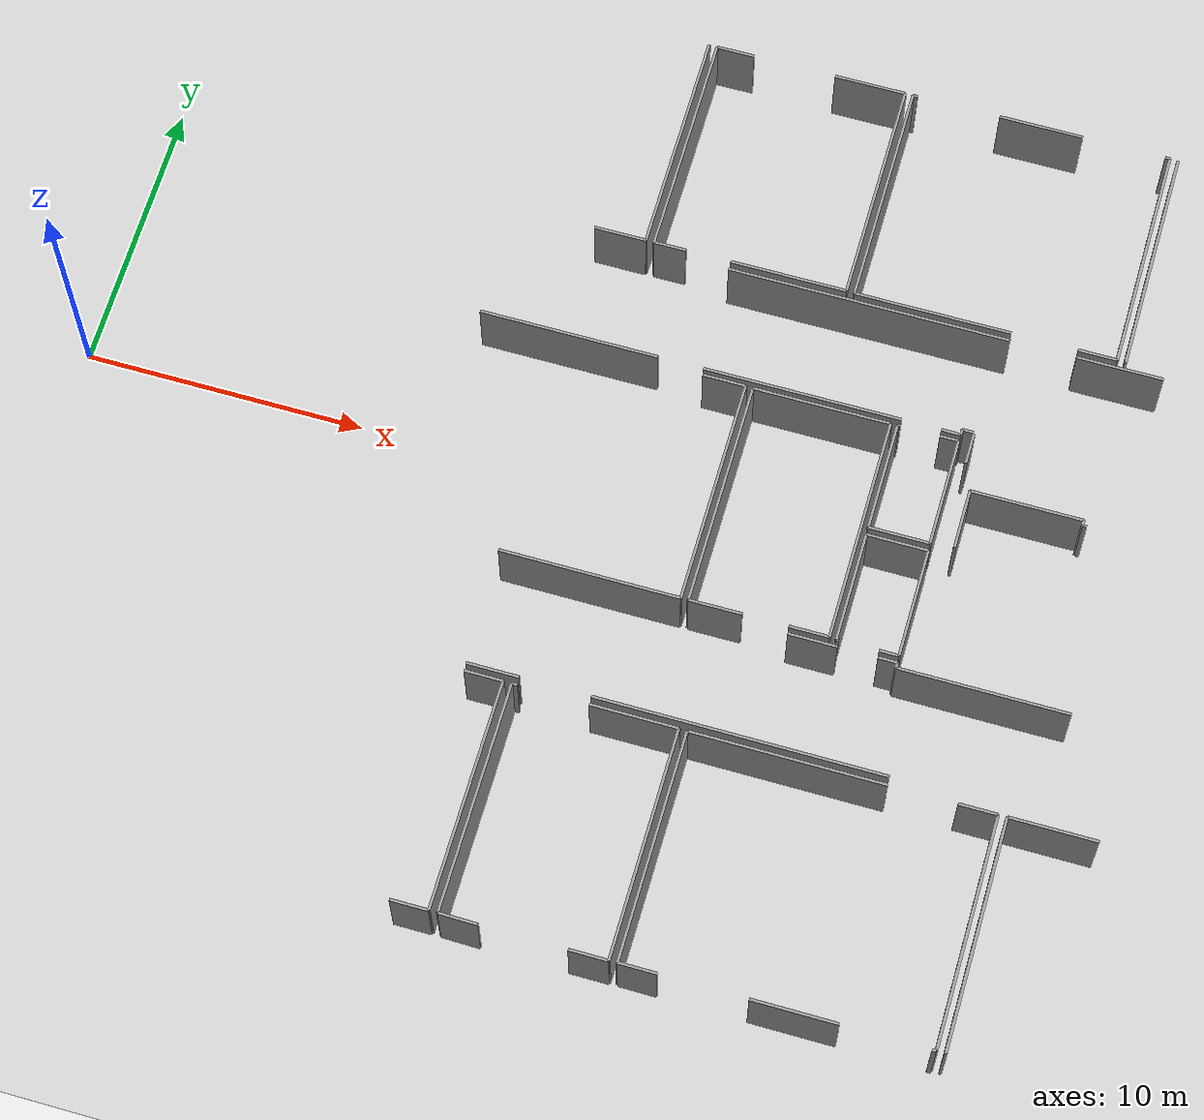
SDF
<sdf version="1.6">
 <world name="default">
  <model name="ground_plane">
   <static>1</static>
   <link name="link">
    <collision name="collision">
     <geometry><plane><normal>0 0 1</normal><size>100 100</size></plane></geometry>
     <surface><friction><ode><mu>100</mu><mu2>50</mu2></ode></friction></surface>
    </collision>
    <visual name="visual">
     <cast_shadows>0</cast_shadows>
     <geometry><plane><normal>0 0 1</normal><size>100 100</size></plane></geometry>
     <material>
      <script><uri>file://media/materials/scripts/gazebo.material</uri><name>Gazebo/Grey</name></script>
     </material>
    </visual>
   </link>
  </model>
  <model name="50041172">
   <static>1</static>
   <link name="Wall_59">
    <collision name="Wall_59_Collision">
     <geometry><box><size>1.3399383951 0.1 2.5</size></box></geometry>
     <pose>0.669969197549 0 1.25 0 0 0</pose>
    </collision>
    <visual name="Wall_59_Visual">
     <pose>0.669969197549 0 1.25 0 0 0</pose>
     <geometry><box><size>1.3399383951 0.1 2.5</size></box></geometry>
     <material>
      <script><uri>file://media/materials/scripts/gazebo.material</uri><name>Gazebo/Grey</name></script>
      <ambient>1 1 1 1</ambient>
     </material>
    </visual>
    <pose>82.1731923407 -25.3285065574 0 0 0 0.0</pose>
   </link>
   <link name="Wall_60">
    <collision name="Wall_60_Collision">
     <geometry><box><size>8.22012638532 0.1 2.5</size></box></geometry>
     <pose>4.11006319266 0 1.25 0 0 0</pose>
    </collision>
    <visual name="Wall_60_Visual">
     <pose>4.11006319266 0 1.25 0 0 0</pose>
     <geometry><box><size>8.22012638532 0.1 2.5</size></box></geometry>
     <material>
      <script><uri>file://media/materials/scripts/gazebo.material</uri><name>Gazebo/Grey</name></script>
      <ambient>1 1 1 1</ambient>
     </material>
    </visual>
    <pose>83.5131307358 -25.3285065574 0 0 0 -1.57079632679</pose>
   </link>
   <link name="Wall_61">
    <collision name="Wall_61_Collision">
     <geometry><box><size>1.3290146391 0.1 2.5</size></box></geometry>
     <pose>0.664507319552 0 1.25 0 0 0</pose>
    </collision>
    <visual name="Wall_61_Visual">
     <pose>0.664507319552 0 1.25 0 0 0</pose>
     <geometry><box><size>1.3290146391 0.1 2.5</size></box></geometry>
     <material>
      <script><uri>file://media/materials/scripts/gazebo.material</uri><name>Gazebo/Grey</name></script>
      <ambient>1 1 1 1</ambient>
     </material>
    </visual>
    <pose>83.5131307358 -33.5486329427 0 0 0 3.14159265359</pose>
   </link>
   <link name="Wall_63">
    <collision name="Wall_63_Collision">
     <geometry><box><size>8.21352132355 0.1 2.5</size></box></geometry>
     <pose>4.10676066178 0 1.25 0 0 0</pose>
    </collision>
    <visual name="Wall_63_Visual">
     <pose>4.10676066178 0 1.25 0 0 0</pose>
     <geometry><box><size>8.21352132355 0.1 2.5</size></box></geometry>
     <material>
      <script><uri>file://media/materials/scripts/gazebo.material</uri><name>Gazebo/Grey</name></script>
      <ambient>1 1 1 1</ambient>
     </material>
    </visual>
    <pose>83.8153123115 -33.5468546569 0 0 0 1.57079632679</pose>
   </link>
   <link name="Wall_64">
    <collision name="Wall_64_Collision">
     <geometry><box><size>0.201073322537 0.1 2.5</size></box></geometry>
     <pose>0.100536661268 0 1.25 0 0 0</pose>
    </collision>
    <visual name="Wall_64_Visual">
     <pose>0.100536661268 0 1.25 0 0 0</pose>
     <geometry><box><size>0.201073322537 0.1 2.5</size></box></geometry>
     <material>
      <script><uri>file://media/materials/scripts/gazebo.material</uri><name>Gazebo/Grey</name></script>
      <ambient>1 1 1 1</ambient>
     </material>
    </visual>
    <pose>83.8153123115 -25.3333333333 0 0 0 0.0</pose>
   </link>
   <link name="Wall_65">
    <collision name="Wall_65_Collision">
     <geometry><box><size>3.06081102537 0.1 2.5</size></box></geometry>
     <pose>1.53040551269 0 1.25 0 0 0</pose>
    </collision>
    <visual name="Wall_65_Visual">
     <pose>1.53040551269 0 1.25 0 0 0</pose>
     <geometry><box><size>3.06081102537 0.1 2.5</size></box></geometry>
     <material>
      <script><uri>file://media/materials/scripts/gazebo.material</uri><name>Gazebo/Grey</name></script>
      <ambient>1 1 1 1</ambient>
     </material>
    </visual>
    <pose>86.4777873043 -25.3333333333 0 0 0 0.0</pose>
   </link>
   <link name="Wall_66">
    <collision name="Wall_66_Collision">
     <geometry><box><size>8.23257438633 0.1 2.5</size></box></geometry>
     <pose>4.11628719317 0 1.25 0 0 0</pose>
    </collision>
    <visual name="Wall_66_Visual">
     <pose>4.11628719317 0 1.25 0 0 0</pose>
     <geometry><box><size>8.23257438633 0.1 2.5</size></box></geometry>
     <material>
      <script><uri>file://media/materials/scripts/gazebo.material</uri><name>Gazebo/Grey</name></script>
      <ambient>1 1 1 1</ambient>
     </material>
    </visual>
    <pose>89.5385983297 -25.3333333333 0 0 0 -1.57079632679</pose>
   </link>
   <link name="Wall_67">
    <collision name="Wall_67_Collision">
     <geometry><box><size>1.3550538249 0.1 2.5</size></box></geometry>
     <pose>0.677526912451 0 1.25 0 0 0</pose>
    </collision>
    <visual name="Wall_67_Visual">
     <pose>0.677526912451 0 1.25 0 0 0</pose>
     <geometry><box><size>1.3550538249 0.1 2.5</size></box></geometry>
     <material>
      <script><uri>file://media/materials/scripts/gazebo.material</uri><name>Gazebo/Grey</name></script>
      <ambient>1 1 1 1</ambient>
     </material>
    </visual>
    <pose>89.5385983297 -33.5659077197 0 0 0 3.14159265359</pose>
   </link>
   <link name="Wall_68">
    <collision name="Wall_68_Collision">
     <geometry><box><size>1.35556879199 0.1 2.5</size></box></geometry>
     <pose>0.677784395995 0 1.25 0 0 0</pose>
    </collision>
    <visual name="Wall_68_Visual">
     <pose>0.677784395995 0 1.25 0 0 0</pose>
     <geometry><box><size>1.35556879199 0.1 2.5</size></box></geometry>
     <material>
      <script><uri>file://media/materials/scripts/gazebo.material</uri><name>Gazebo/Grey</name></script>
      <ambient>1 1 1 1</ambient>
     </material>
    </visual>
    <pose>85.1707471976 -33.5659077197 0 0 0 3.12753678989</pose>
   </link>
   <link name="Wall_69">
    <collision name="Wall_69_Collision">
     <geometry><box><size>8.20056524086 0.1 2.5</size></box></geometry>
     <pose>4.10028262043 0 1.25 0 0 0</pose>
    </collision>
    <visual name="Wall_69_Visual">
     <pose>4.10028262043 0 1.25 0 0 0</pose>
     <geometry><box><size>8.20056524086 0.1 2.5</size></box></geometry>
     <material>
      <script><uri>file://media/materials/scripts/gazebo.material</uri><name>Gazebo/Grey</name></script>
      <ambient>1 1 1 1</ambient>
     </material>
    </visual>
    <pose>89.8213457813 -33.5471086977 0 0 0 1.57079632679</pose>
   </link>
   <link name="Wall_70">
    <collision name="Wall_70_Collision">
     <geometry><box><size>6.79444920771 0.1 2.5</size></box></geometry>
     <pose>3.39722460386 0 1.25 0 0 0</pose>
    </collision>
    <visual name="Wall_70_Visual">
     <pose>3.39722460386 0 1.25 0 0 0</pose>
     <geometry><box><size>6.79444920771 0.1 2.5</size></box></geometry>
     <material>
      <script><uri>file://media/materials/scripts/gazebo.material</uri><name>Gazebo/Grey</name></script>
      <ambient>1 1 1 1</ambient>
     </material>
    </visual>
    <pose>89.8213457813 -25.3465434569 0 0 0 0.0</pose>
   </link>
   <link name="Wall_71">
    <collision name="Wall_71_Collision">
     <geometry><box><size>1.3467974977 0.1 2.5</size></box></geometry>
     <pose>0.673398748849 0 1.25 0 0 0</pose>
    </collision>
    <visual name="Wall_71_Visual">
     <pose>0.673398748849 0 1.25 0 0 0</pose>
     <geometry><box><size>1.3467974977 0.1 2.5</size></box></geometry>
     <material>
      <script><uri>file://media/materials/scripts/gazebo.material</uri><name>Gazebo/Grey</name></script>
      <ambient>1 1 1 1</ambient>
     </material>
    </visual>
    <pose>98.9680861198 -25.3465434569 0 0 0 0.0</pose>
   </link>
   <link name="Wall_72">
    <collision name="Wall_72_Collision">
     <geometry><box><size>8.20374075133 0.1 2.5</size></box></geometry>
     <pose>4.10187037566 0 1.25 0 0 0</pose>
    </collision>
    <visual name="Wall_72_Visual">
     <pose>4.10187037566 0 1.25 0 0 0</pose>
     <geometry><box><size>8.20374075133 0.1 2.5</size></box></geometry>
     <material>
      <script><uri>file://media/materials/scripts/gazebo.material</uri><name>Gazebo/Grey</name></script>
      <ambient>1 1 1 1</ambient>
     </material>
    </visual>
    <pose>100.314883618 -25.3465434569 0 0 0 -1.57079632679</pose>
   </link>
   <link name="Wall_73">
    <collision name="Wall_73_Collision">
     <geometry><box><size>0.146708583405 0.1 2.5</size></box></geometry>
     <pose>0.0733542917024 0 1.25 0 0 0</pose>
    </collision>
    <visual name="Wall_73_Visual">
     <pose>0.0733542917024 0 1.25 0 0 0</pose>
     <geometry><box><size>0.146708583405 0.1 2.5</size></box></geometry>
     <material>
      <script><uri>file://media/materials/scripts/gazebo.material</uri><name>Gazebo/Grey</name></script>
      <ambient>1 1 1 1</ambient>
     </material>
    </visual>
    <pose>100.314883618 -33.5502842082 0 0 0 3.14159265359</pose>
   </link>
   <link name="Wall_74">
    <collision name="Wall_74_Collision">
     <geometry><box><size>2.96249722143 0.1 2.5</size></box></geometry>
     <pose>1.48124861071 0 1.25 0 0 0</pose>
    </collision>
    <visual name="Wall_74_Visual">
     <pose>1.48124861071 0 1.25 0 0 0</pose>
     <geometry><box><size>2.96249722143 0.1 2.5</size></box></geometry>
     <material>
      <script><uri>file://media/materials/scripts/gazebo.material</uri><name>Gazebo/Grey</name></script>
      <ambient>1 1 1 1</ambient>
     </material>
    </visual>
    <pose>97.1454701343 -33.5502842082 0 0 0 3.14159265359</pose>
   </link>
   <link name="Wall_75">
    <collision name="Wall_75_Collision">
     <geometry><box><size>1.32647803173 0.1 2.5</size></box></geometry>
     <pose>0.663239015865 0 1.25 0 0 0</pose>
    </collision>
    <visual name="Wall_75_Visual">
     <pose>0.663239015865 0 1.25 0 0 0</pose>
     <geometry><box><size>1.32647803173 0.1 2.5</size></box></geometry>
     <material>
      <script><uri>file://media/materials/scripts/gazebo.material</uri><name>Gazebo/Grey</name></script>
      <ambient>1 1 1 1</ambient>
     </material>
    </visual>
    <pose>91.1478200121 -33.5502842082 0 0 0 3.13919871006</pose>
   </link>
   <link name="Wall_76">
    <collision name="Wall_76_Collision">
     <geometry><box><size>8.20615413928 0.1 2.5</size></box></geometry>
     <pose>4.10307706964 0 1.25 0 0 0</pose>
    </collision>
    <visual name="Wall_76_Visual">
     <pose>4.10307706964 0 1.25 0 0 0</pose>
     <geometry><box><size>8.20615413928 0.1 2.5</size></box></geometry>
     <material>
      <script><uri>file://media/materials/scripts/gazebo.material</uri><name>Gazebo/Grey</name></script>
      <ambient>1 1 1 1</ambient>
     </material>
    </visual>
    <pose>100.61922454 -33.5491410244 0 0 0 1.57079632679</pose>
   </link>
   <link name="Wall_77">
    <collision name="Wall_77_Collision">
     <geometry><box><size>3.06944841383 0.1 2.5</size></box></geometry>
     <pose>1.53472420692 0 1.25 0 0 0</pose>
    </collision>
    <visual name="Wall_77_Visual">
     <pose>1.53472420692 0 1.25 0 0 0</pose>
     <geometry><box><size>3.06944841383 0.1 2.5</size></box></geometry>
     <material>
      <script><uri>file://media/materials/scripts/gazebo.material</uri><name>Gazebo/Grey</name></script>
      <ambient>1 1 1 1</ambient>
     </material>
    </visual>
    <pose>100.61922454 -25.3429868851 0 0 0 0.0</pose>
   </link>
   <link name="Wall_139">
    <collision name="Wall_139_Collision">
     <geometry><box><size>8.14810580801 0.1 2.5</size></box></geometry>
     <pose>4.074052904 0 1.25 0 0 0</pose>
    </collision>
    <visual name="Wall_139_Visual">
     <pose>4.074052904 0 1.25 0 0 0</pose>
     <geometry><box><size>8.14810580801 0.1 2.5</size></box></geometry>
     <material>
      <script><uri>file://media/materials/scripts/gazebo.material</uri><name>Gazebo/Grey</name></script>
      <ambient>1 1 1 1</ambient>
     </material>
    </visual>
    <pose>88.6052522943 -20.8548474167 0 0 0 1.57079632679</pose>
   </link>
   <link name="Wall_140">
    <collision name="Wall_140_Collision">
     <geometry><box><size>4.85383125337 0.1 2.5</size></box></geometry>
     <pose>2.42691562669 0 1.25 0 0 0</pose>
    </collision>
    <visual name="Wall_140_Visual">
     <pose>2.42691562669 0 1.25 0 0 0</pose>
     <geometry><box><size>4.85383125337 0.1 2.5</size></box></geometry>
     <material>
      <script><uri>file://media/materials/scripts/gazebo.material</uri><name>Gazebo/Grey</name></script>
      <ambient>1 1 1 1</ambient>
     </material>
    </visual>
    <pose>88.6052522943 -12.7067416087 0 0 0 0.0</pose>
   </link>
   <link name="Wall_141">
    <collision name="Wall_141_Collision">
     <geometry><box><size>8.13997650122 0.1 2.5</size></box></geometry>
     <pose>4.06998825061 0 1.25 0 0 0</pose>
    </collision>
    <visual name="Wall_141_Visual">
     <pose>4.06998825061 0 1.25 0 0 0</pose>
     <geometry><box><size>8.13997650122 0.1 2.5</size></box></geometry>
     <material>
      <script><uri>file://media/materials/scripts/gazebo.material</uri><name>Gazebo/Grey</name></script>
      <ambient>1 1 1 1</ambient>
     </material>
    </visual>
    <pose>93.4590835477 -12.7067416087 0 0 0 -1.57079632679</pose>
   </link>
   <link name="Wall_142">
    <collision name="Wall_142_Collision">
     <geometry><box><size>1.39125464418 0.1 2.5</size></box></geometry>
     <pose>0.695627322092 0 1.25 0 0 0</pose>
    </collision>
    <visual name="Wall_142_Visual">
     <pose>0.695627322092 0 1.25 0 0 0</pose>
     <geometry><box><size>1.39125464418 0.1 2.5</size></box></geometry>
     <material>
      <script><uri>file://media/materials/scripts/gazebo.material</uri><name>Gazebo/Grey</name></script>
      <ambient>1 1 1 1</ambient>
     </material>
    </visual>
    <pose>93.4590835477 -20.8467181099 0 0 0 3.14159265359</pose>
   </link>
   <link name="Wall_143">
    <collision name="Wall_143_Collision">
     <geometry><box><size>1.85654823534 0.1 2.5</size></box></geometry>
     <pose>0.928274117668 0 1.25 0 0 0</pose>
    </collision>
    <visual name="Wall_143_Visual">
     <pose>0.928274117668 0 1.25 0 0 0</pose>
     <geometry><box><size>1.85654823534 0.1 2.5</size></box></geometry>
     <material>
      <script><uri>file://media/materials/scripts/gazebo.material</uri><name>Gazebo/Grey</name></script>
      <ambient>1 1 1 1</ambient>
     </material>
    </visual>
    <pose>90.4617827316 -20.8467181099 0 0 0 -3.13721391858</pose>
   </link>
   <link name="Wall_144">
    <collision name="Wall_144_Collision">
     <geometry><box><size>3.95046203677 0.1 2.5</size></box></geometry>
     <pose>1.97523101839 0 1.25 0 0 0</pose>
    </collision>
    <visual name="Wall_144_Visual">
     <pose>1.97523101839 0 1.25 0 0 0</pose>
     <geometry><box><size>3.95046203677 0.1 2.5</size></box></geometry>
     <material>
      <script><uri>file://media/materials/scripts/gazebo.material</uri><name>Gazebo/Grey</name></script>
      <ambient>1 1 1 1</ambient>
     </material>
    </visual>
    <pose>93.6987710775 -20.8619605602 0 0 0 1.57079632679</pose>
   </link>
   <link name="Wall_145">
    <collision name="Wall_145_Collision">
     <geometry><box><size>2.14766123654 0.1 2.5</size></box></geometry>
     <pose>1.07383061827 0 1.25 0 0 0</pose>
    </collision>
    <visual name="Wall_145_Visual">
     <pose>1.07383061827 0 1.25 0 0 0</pose>
     <geometry><box><size>2.14766123654 0.1 2.5</size></box></geometry>
     <material>
      <script><uri>file://media/materials/scripts/gazebo.material</uri><name>Gazebo/Grey</name></script>
      <ambient>1 1 1 1</ambient>
     </material>
    </visual>
    <pose>93.6987710775 -16.9114985234 0 0 0 0.0</pose>
   </link>
   <link name="Wall_146">
    <collision name="Wall_146_Collision">
     <geometry><box><size>3.94563526087 0.1 2.5</size></box></geometry>
     <pose>1.97281763043 0 1.25 0 0 0</pose>
    </collision>
    <visual name="Wall_146_Visual">
     <pose>1.97281763043 0 1.25 0 0 0</pose>
     <geometry><box><size>3.94563526087 0.1 2.5</size></box></geometry>
     <material>
      <script><uri>file://media/materials/scripts/gazebo.material</uri><name>Gazebo/Grey</name></script>
      <ambient>1 1 1 1</ambient>
     </material>
    </visual>
    <pose>95.846432314 -16.9114985234 0 0 0 -1.57079632679</pose>
   </link>
   <link name="Wall_147">
    <collision name="Wall_147_Collision">
     <geometry><box><size>0.680067320822 0.1 2.5</size></box></geometry>
     <pose>0.340033660411 0 1.25 0 0 0</pose>
    </collision>
    <visual name="Wall_147_Visual">
     <pose>0.340033660411 0 1.25 0 0 0</pose>
     <geometry><box><size>0.680067320822 0.1 2.5</size></box></geometry>
     <material>
      <script><uri>file://media/materials/scripts/gazebo.material</uri><name>Gazebo/Grey</name></script>
      <ambient>1 1 1 1</ambient>
     </material>
    </visual>
    <pose>95.846432314 -20.8571337843 0 0 0 3.14159265359</pose>
   </link>
   <link name="Wall_148">
    <collision name="Wall_148_Collision">
     <geometry><box><size>0.0856209017962 0.1 2.5</size></box></geometry>
     <pose>0.0428104508981 0 1.25 0 0 0</pose>
    </collision>
    <visual name="Wall_148_Visual">
     <pose>0.0428104508981 0 1.25 0 0 0</pose>
     <geometry><box><size>0.0856209017962 0.1 2.5</size></box></geometry>
     <material>
      <script><uri>file://media/materials/scripts/gazebo.material</uri><name>Gazebo/Grey</name></script>
      <ambient>1 1 1 1</ambient>
     </material>
    </visual>
    <pose>93.7842558191 -20.8571337843 0 0 0 -3.0851889478</pose>
   </link>
   <link name="Wall_157">
    <collision name="Wall_157_Collision">
     <geometry><box><size>2.14512082817 0.1 2.5</size></box></geometry>
     <pose>1.07256041409 0 1.25 0 0 0</pose>
    </collision>
    <visual name="Wall_157_Visual">
     <pose>1.07256041409 0 1.25 0 0 0</pose>
     <geometry><box><size>2.14512082817 0.1 2.5</size></box></geometry>
     <material>
      <script><uri>file://media/materials/scripts/gazebo.material</uri><name>Gazebo/Grey</name></script>
      <ambient>1 1 1 1</ambient>
     </material>
    </visual>
    <pose>96.6599980947 -16.5447905751 0 0 0 1.57079632679</pose>
   </link>
   <link name="Wall_158">
    <collision name="Wall_158_Collision">
     <geometry><box><size>3.93991934203 0.1 2.5</size></box></geometry>
     <pose>1.96995967102 0 1.25 0 0 0</pose>
    </collision>
    <visual name="Wall_158_Visual">
     <pose>1.96995967102 0 1.25 0 0 0</pose>
     <geometry><box><size>3.93991934203 0.1 2.5</size></box></geometry>
     <material>
      <script><uri>file://media/materials/scripts/gazebo.material</uri><name>Gazebo/Grey</name></script>
      <ambient>1 1 1 1</ambient>
     </material>
    </visual>
    <pose>96.6599980947 -14.3996697469 0 0 0 0.0</pose>
   </link>
   <link name="Wall_159">
    <collision name="Wall_159_Collision">
     <geometry><box><size>0.191927852402 0.1 2.5</size></box></geometry>
     <pose>0.0959639262011 0 1.25 0 0 0</pose>
    </collision>
    <visual name="Wall_159_Visual">
     <pose>0.0959639262011 0 1.25 0 0 0</pose>
     <geometry><box><size>0.191927852402 0.1 2.5</size></box></geometry>
     <material>
      <script><uri>file://media/materials/scripts/gazebo.material</uri><name>Gazebo/Grey</name></script>
      <ambient>1 1 1 1</ambient>
     </material>
    </visual>
    <pose>100.599917437 -14.3996697469 0 0 0 -1.57079632679</pose>
   </link>
   <link name="Wall_160">
    <collision name="Wall_160_Collision">
     <geometry><box><size>0.148740910101 0.1 2.5</size></box></geometry>
     <pose>0.0743704550506 0 1.25 0 0 0</pose>
    </collision>
    <visual name="Wall_160_Visual">
     <pose>0.0743704550506 0 1.25 0 0 0</pose>
     <geometry><box><size>0.148740910101 0.1 2.5</size></box></geometry>
     <material>
      <script><uri>file://media/materials/scripts/gazebo.material</uri><name>Gazebo/Grey</name></script>
      <ambient>1 1 1 1</ambient>
     </material>
    </visual>
    <pose>100.599917437 -14.5915975993 0 0 0 0.0</pose>
   </link>
   <link name="Wall_184">
    <collision name="Wall_184_Collision">
     <geometry><box><size>1.70651932298 0.1 2.5</size></box></geometry>
     <pose>0.853259661491 0 1.25 0 0 0</pose>
    </collision>
    <visual name="Wall_184_Visual">
     <pose>0.853259661491 0 1.25 0 0 0</pose>
     <geometry><box><size>1.70651932298 0.1 2.5</size></box></geometry>
     <material>
      <script><uri>file://media/materials/scripts/gazebo.material</uri><name>Gazebo/Grey</name></script>
      <ambient>1 1 1 1</ambient>
     </material>
    </visual>
    <pose>92.0969165793 -21.1076180496 0 0 0 0.0</pose>
   </link>
   <link name="Wall_185">
    <collision name="Wall_185_Collision">
     <geometry><box><size>0.657965767997 0.1 2.5</size></box></geometry>
     <pose>0.328982883999 0 1.25 0 0 0</pose>
    </collision>
    <visual name="Wall_185_Visual">
     <pose>0.328982883999 0 1.25 0 0 0</pose>
     <geometry><box><size>0.657965767997 0.1 2.5</size></box></geometry>
     <material>
      <script><uri>file://media/materials/scripts/gazebo.material</uri><name>Gazebo/Grey</name></script>
      <ambient>1 1 1 1</ambient>
     </material>
    </visual>
    <pose>95.1911339748 -21.1076180496 0 0 0 0.0</pose>
   </link>
   <link name="Wall_186">
    <collision name="Wall_186_Collision">
     <geometry><box><size>0.193198056588 0.1 2.5</size></box></geometry>
     <pose>0.0965990282938 0 1.25 0 0 0</pose>
    </collision>
    <visual name="Wall_186_Visual">
     <pose>0.0965990282938 0 1.25 0 0 0</pose>
     <geometry><box><size>0.193198056588 0.1 2.5</size></box></geometry>
     <material>
      <script><uri>file://media/materials/scripts/gazebo.material</uri><name>Gazebo/Grey</name></script>
      <ambient>1 1 1 1</ambient>
     </material>
    </visual>
    <pose>95.8490997428 -21.1076180496 0 0 0 -1.57079632679</pose>
   </link>
   <link name="Wall_187">
    <collision name="Wall_187_Collision">
     <geometry><box><size>5.96144930298 0.1 2.5</size></box></geometry>
     <pose>2.98072465149 0 1.25 0 0 0</pose>
    </collision>
    <visual name="Wall_187_Visual">
     <pose>2.98072465149 0 1.25 0 0 0</pose>
     <geometry><box><size>5.96144930298 0.1 2.5</size></box></geometry>
     <material>
      <script><uri>file://media/materials/scripts/gazebo.material</uri><name>Gazebo/Grey</name></script>
      <ambient>1 1 1 1</ambient>
     </material>
    </visual>
    <pose>95.8490997428 -21.3008161062 0 0 0 0.0</pose>
   </link>
   <link name="Wall_195">
    <collision name="Wall_195_Collision">
     <geometry><box><size>10.1244165 0.1 2.5</size></box></geometry>
     <pose>5.06220824998 0 1.25 0 0 0</pose>
    </collision>
    <visual name="Wall_195_Visual">
     <pose>5.06220824998 0 1.25 0 0 0</pose>
     <geometry><box><size>10.1244165 0.1 2.5</size></box></geometry>
     <material>
      <script><uri>file://media/materials/scripts/gazebo.material</uri><name>Gazebo/Grey</name></script>
      <ambient>1 1 1 1</ambient>
     </material>
    </visual>
    <pose>96.5886126195 -25.0504588613 0 0 0 3.14159265359</pose>
   </link>
   <link name="Wall_196">
    <collision name="Wall_196_Collision">
     <geometry><box><size>1.83874757867 0.1 2.5</size></box></geometry>
     <pose>0.919373789337 0 1.25 0 0 0</pose>
    </collision>
    <visual name="Wall_196_Visual">
     <pose>0.919373789337 0 1.25 0 0 0</pose>
     <geometry><box><size>1.83874757867 0.1 2.5</size></box></geometry>
     <material>
      <script><uri>file://media/materials/scripts/gazebo.material</uri><name>Gazebo/Grey</name></script>
      <ambient>1 1 1 1</ambient>
     </material>
    </visual>
    <pose>83.9908545299 -25.0504588613 0 0 0 3.14159265359</pose>
   </link>
   <link name="Wall_252">
    <collision name="Wall_252_Collision">
     <geometry><box><size>8.19891397542 0.1 2.5</size></box></geometry>
     <pose>4.09945698771 0 1.25 0 0 0</pose>
    </collision>
    <visual name="Wall_252_Visual">
     <pose>4.09945698771 0 1.25 0 0 0</pose>
     <geometry><box><size>8.19891397542 0.1 2.5</size></box></geometry>
     <material>
      <script><uri>file://media/materials/scripts/gazebo.material</uri><name>Gazebo/Grey</name></script>
      <ambient>1 1 1 1</ambient>
     </material>
    </visual>
    <pose>83.5182115525 -0.0186720015242 0 0 0 -1.57079632679</pose>
   </link>
   <link name="Wall_253">
    <collision name="Wall_253_Collision">
     <geometry><box><size>1.85716553936 0.1 2.5</size></box></geometry>
     <pose>0.92858276968 0 1.25 0 0 0</pose>
    </collision>
    <visual name="Wall_253_Visual">
     <pose>0.92858276968 0 1.25 0 0 0</pose>
     <geometry><box><size>1.85716553936 0.1 2.5</size></box></geometry>
     <material>
      <script><uri>file://media/materials/scripts/gazebo.material</uri><name>Gazebo/Grey</name></script>
      <ambient>1 1 1 1</ambient>
     </material>
    </visual>
    <pose>83.5182115525 -8.21758597695 0 0 0 3.14159265359</pose>
   </link>
   <link name="Wall_255">
    <collision name="Wall_255_Collision">
     <geometry><box><size>8.19497634245 0.1 2.5</size></box></geometry>
     <pose>4.09748817122 0 1.25 0 0 0</pose>
    </collision>
    <visual name="Wall_255_Visual">
     <pose>4.09748817122 0 1.25 0 0 0</pose>
     <geometry><box><size>8.19497634245 0.1 2.5</size></box></geometry>
     <material>
      <script><uri>file://media/materials/scripts/gazebo.material</uri><name>Gazebo/Grey</name></script>
      <ambient>1 1 1 1</ambient>
     </material>
    </visual>
    <pose>83.8159474135 -8.21784001778 0 0 0 1.57079632679</pose>
   </link>
   <link name="Wall_256">
    <collision name="Wall_256_Collision">
     <geometry><box><size>1.37093137722 0.1 2.5</size></box></geometry>
     <pose>0.685465688609 0 1.25 0 0 0</pose>
    </collision>
    <visual name="Wall_256_Visual">
     <pose>0.685465688609 0 1.25 0 0 0</pose>
     <geometry><box><size>1.37093137722 0.1 2.5</size></box></geometry>
     <material>
      <script><uri>file://media/materials/scripts/gazebo.material</uri><name>Gazebo/Grey</name></script>
      <ambient>1 1 1 1</ambient>
     </material>
    </visual>
    <pose>83.8159474135 -0.0228636753358 0 0 0 0.0</pose>
   </link>
   <link name="Wall_257">
    <collision name="Wall_257_Collision">
     <geometry><box><size>2.56441522975 0.1 2.5</size></box></geometry>
     <pose>1.28220761487 0 1.25 0 0 0</pose>
    </collision>
    <visual name="Wall_257_Visual">
     <pose>1.28220761487 0 1.25 0 0 0</pose>
     <geometry><box><size>2.56441522975 0.1 2.5</size></box></geometry>
     <material>
      <script><uri>file://media/materials/scripts/gazebo.material</uri><name>Gazebo/Grey</name></script>
      <ambient>1 1 1 1</ambient>
     </material>
    </visual>
    <pose>88.1643644216 -0.0228636753358 0 0 0 0.0</pose>
   </link>
   <link name="Wall_258">
    <collision name="Wall_258_Collision">
     <geometry><box><size>8.18659299482 0.1 2.5</size></box></geometry>
     <pose>4.09329649741 0 1.25 0 0 0</pose>
    </collision>
    <visual name="Wall_258_Visual">
     <pose>4.09329649741 0 1.25 0 0 0</pose>
     <geometry><box><size>8.18659299482 0.1 2.5</size></box></geometry>
     <material>
      <script><uri>file://media/materials/scripts/gazebo.material</uri><name>Gazebo/Grey</name></script>
      <ambient>1 1 1 1</ambient>
     </material>
    </visual>
    <pose>90.7287796513 -0.0228636753358 0 0 0 -1.57079632679</pose>
   </link>
   <link name="Wall_259">
    <collision name="Wall_259_Collision">
     <geometry><box><size>4.15229748182 0.1 2.5</size></box></geometry>
     <pose>2.07614874091 0 1.25 0 0 0</pose>
    </collision>
    <visual name="Wall_259_Visual">
     <pose>2.07614874091 0 1.25 0 0 0</pose>
     <geometry><box><size>4.15229748182 0.1 2.5</size></box></geometry>
     <material>
      <script><uri>file://media/materials/scripts/gazebo.material</uri><name>Gazebo/Grey</name></script>
      <ambient>1 1 1 1</ambient>
     </material>
    </visual>
    <pose>90.7287796513 -8.20945667016 0 0 0 3.14159265359</pose>
   </link>
   <link name="Wall_260">
    <collision name="Wall_260_Collision">
     <geometry><box><size>1.14778711792 0.1 2.5</size></box></geometry>
     <pose>0.573893558962 0 1.25 0 0 0</pose>
    </collision>
    <visual name="Wall_260_Visual">
     <pose>0.573893558962 0 1.25 0 0 0</pose>
     <geometry><box><size>1.14778711792 0.1 2.5</size></box></geometry>
     <material>
      <script><uri>file://media/materials/scripts/gazebo.material</uri><name>Gazebo/Grey</name></script>
      <ambient>1 1 1 1</ambient>
     </material>
    </visual>
    <pose>84.9637039154 -8.20945667016 0 0 0 -3.13428866661</pose>
   </link>
   <link name="Wall_261">
    <collision name="Wall_261_Collision">
     <geometry><box><size>8.20615413928 0.1 2.5</size></box></geometry>
     <pose>4.10307706964 0 1.25 0 0 0</pose>
    </collision>
    <visual name="Wall_261_Visual">
     <pose>4.10307706964 0 1.25 0 0 0</pose>
     <geometry><box><size>8.20615413928 0.1 2.5</size></box></geometry>
     <material>
      <script><uri>file://media/materials/scripts/gazebo.material</uri><name>Gazebo/Grey</name></script>
      <ambient>1 1 1 1</ambient>
     </material>
    </visual>
    <pose>91.0168619606 -8.22279381411 0 0 0 1.57079632679</pose>
   </link>
   <link name="Wall_262">
    <collision name="Wall_262_Collision">
     <geometry><box><size>0.1713505446 0.1 2.5</size></box></geometry>
     <pose>0.0856752723 0 1.25 0 0 0</pose>
    </collision>
    <visual name="Wall_262_Visual">
     <pose>0.0856752723 0 1.25 0 0 0</pose>
     <geometry><box><size>0.1713505446 0.1 2.5</size></box></geometry>
     <material>
      <script><uri>file://media/materials/scripts/gazebo.material</uri><name>Gazebo/Grey</name></script>
      <ambient>1 1 1 1</ambient>
     </material>
    </visual>
    <pose>91.0168619606 -0.0166396748277 0 0 0 0.0</pose>
   </link>
   <link name="Wall_263">
    <collision name="Wall_263_Collision">
     <geometry><box><size>3.01495665428 0.1 2.5</size></box></geometry>
     <pose>1.50747832714 0 1.25 0 0 0</pose>
    </collision>
    <visual name="Wall_263_Visual">
     <pose>1.50747832714 0 1.25 0 0 0</pose>
     <geometry><box><size>3.01495665428 0.1 2.5</size></box></geometry>
     <material>
      <script><uri>file://media/materials/scripts/gazebo.material</uri><name>Gazebo/Grey</name></script>
      <ambient>1 1 1 1</ambient>
     </material>
    </visual>
    <pose>94.176621892 -0.0166396748277 0 0 0 0.0</pose>
   </link>
   <link name="Wall_264">
    <collision name="Wall_264_Collision">
     <geometry><box><size>0.173255850878 0.1 2.5</size></box></geometry>
     <pose>0.086627925439 0 1.25 0 0 0</pose>
    </collision>
    <visual name="Wall_264_Visual">
     <pose>0.086627925439 0 1.25 0 0 0</pose>
     <geometry><box><size>0.173255850878 0.1 2.5</size></box></geometry>
     <material>
      <script><uri>file://media/materials/scripts/gazebo.material</uri><name>Gazebo/Grey</name></script>
      <ambient>1 1 1 1</ambient>
     </material>
    </visual>
    <pose>100.155981074 -0.0166396748277 0 0 0 0.0</pose>
   </link>
   <link name="Wall_265">
    <collision name="Wall_265_Collision">
     <geometry><box><size>8.204248833 0.1 2.5</size></box></geometry>
     <pose>4.1021244165 0 1.25 0 0 0</pose>
    </collision>
    <visual name="Wall_265_Visual">
     <pose>4.1021244165 0 1.25 0 0 0</pose>
     <geometry><box><size>8.204248833 0.1 2.5</size></box></geometry>
     <material>
      <script><uri>file://media/materials/scripts/gazebo.material</uri><name>Gazebo/Grey</name></script>
      <ambient>1 1 1 1</ambient>
     </material>
    </visual>
    <pose>100.329236925 -0.0166396748277 0 0 0 -1.57079632679</pose>
   </link>
   <link name="Wall_266">
    <collision name="Wall_266_Collision">
     <geometry><box><size>1.39011146042 0.1 2.5</size></box></geometry>
     <pose>0.695055730209 0 1.25 0 0 0</pose>
    </collision>
    <visual name="Wall_266_Visual">
     <pose>0.695055730209 0 1.25 0 0 0</pose>
     <geometry><box><size>1.39011146042 0.1 2.5</size></box></geometry>
     <material>
      <script><uri>file://media/materials/scripts/gazebo.material</uri><name>Gazebo/Grey</name></script>
      <ambient>1 1 1 1</ambient>
     </material>
    </visual>
    <pose>100.329236925 -8.22088850783 0 0 0 3.14159265359</pose>
   </link>
   <link name="Wall_267">
    <collision name="Wall_267_Collision">
     <geometry><box><size>5.57136992345 0.1 2.5</size></box></geometry>
     <pose>2.78568496173 0 1.25 0 0 0</pose>
    </collision>
    <visual name="Wall_267_Visual">
     <pose>2.78568496173 0 1.25 0 0 0</pose>
     <geometry><box><size>5.57136992345 0.1 2.5</size></box></geometry>
     <material>
      <script><uri>file://media/materials/scripts/gazebo.material</uri><name>Gazebo/Grey</name></script>
      <ambient>1 1 1 1</ambient>
     </material>
    </visual>
    <pose>96.5882315582 -8.22088850783 0 0 0 -3.14125067193</pose>
   </link>
   <link name="Wall_268">
    <collision name="Wall_268_Collision">
     <geometry><box><size>8.19510336287 0.1 2.5</size></box></geometry>
     <pose>4.09755168143 0 1.25 0 0 0</pose>
    </collision>
    <visual name="Wall_268_Visual">
     <pose>4.09755168143 0 1.25 0 0 0</pose>
     <geometry><box><size>8.19510336287 0.1 2.5</size></box></geometry>
     <material>
      <script><uri>file://media/materials/scripts/gazebo.material</uri><name>Gazebo/Grey</name></script>
      <ambient>1 1 1 1</ambient>
     </material>
    </visual>
    <pose>100.6251945 -8.22203169159 0 0 0 1.57079632679</pose>
   </link>
   <link name="Wall_317">
    <collision name="Wall_317_Collision">
     <geometry><box><size>1.51979930774 0.1 2.5</size></box></geometry>
     <pose>0.759899653869 0 1.25 0 0 0</pose>
    </collision>
    <visual name="Wall_317_Visual">
     <pose>0.759899653869 0 1.25 0 0 0</pose>
     <geometry><box><size>1.51979930774 0.1 2.5</size></box></geometry>
     <material>
      <script><uri>file://media/materials/scripts/gazebo.material</uri><name>Gazebo/Grey</name></script>
      <ambient>1 1 1 1</ambient>
     </material>
    </visual>
    <pose>86.8234098631 -12.6897208726 0 0 0 0.0</pose>
   </link>
   <link name="Wall_318">
    <collision name="Wall_318_Collision">
     <geometry><box><size>8.17300181004 0.1 2.5</size></box></geometry>
     <pose>4.08650090502 0 1.25 0 0 0</pose>
    </collision>
    <visual name="Wall_318_Visual">
     <pose>4.08650090502 0 1.25 0 0 0</pose>
     <geometry><box><size>8.17300181004 0.1 2.5</size></box></geometry>
     <material>
      <script><uri>file://media/materials/scripts/gazebo.material</uri><name>Gazebo/Grey</name></script>
      <ambient>1 1 1 1</ambient>
     </material>
    </visual>
    <pose>88.3432091709 -12.6897208726 0 0 0 -1.57079632679</pose>
   </link>
   <link name="Wall_319">
    <collision name="Wall_319_Collision">
     <geometry><box><size>6.34454303912 0.1 2.5</size></box></geometry>
     <pose>3.17227151956 0 1.25 0 0 0</pose>
    </collision>
    <visual name="Wall_319_Visual">
     <pose>3.17227151956 0 1.25 0 0 0</pose>
     <geometry><box><size>6.34454303912 0.1 2.5</size></box></geometry>
     <material>
      <script><uri>file://media/materials/scripts/gazebo.material</uri><name>Gazebo/Grey</name></script>
      <ambient>1 1 1 1</ambient>
     </material>
    </visual>
    <pose>88.3432091709 -20.8627226827 0 0 0 3.14137242896</pose>
   </link>
   <link name="Wall_320">
    <collision name="Wall_320_Collision">
     <geometry><box><size>3.94563526087 0.1 2.5</size></box></geometry>
     <pose>1.97281763043 0 1.25 0 0 0</pose>
    </collision>
    <visual name="Wall_320_Visual">
     <pose>1.97281763043 0 1.25 0 0 0</pose>
     <geometry><box><size>3.94563526087 0.1 2.5</size></box></geometry>
     <material>
      <script><uri>file://media/materials/scripts/gazebo.material</uri><name>Gazebo/Grey</name></script>
      <ambient>1 1 1 1</ambient>
     </material>
    </visual>
    <pose>93.6977549141 -16.6403099298 0 0 0 1.57079632679</pose>
   </link>
   <link name="Wall_321">
    <collision name="Wall_321_Collision">
     <geometry><box><size>0.09259788511 0.1 2.5</size></box></geometry>
     <pose>0.046298942555 0 1.25 0 0 0</pose>
    </collision>
    <visual name="Wall_321_Visual">
     <pose>0.046298942555 0 1.25 0 0 0</pose>
     <geometry><box><size>0.09259788511 0.1 2.5</size></box></geometry>
     <material>
      <script><uri>file://media/materials/scripts/gazebo.material</uri><name>Gazebo/Grey</name></script>
      <ambient>1 1 1 1</ambient>
     </material>
    </visual>
    <pose>93.6977549141 -12.694674669 0 0 0 0.0</pose>
   </link>
   <link name="Wall_322">
    <collision name="Wall_322_Collision">
     <geometry><box><size>0.651868787908 0.1 2.5</size></box></geometry>
     <pose>0.325934393954 0 1.25 0 0 0</pose>
    </collision>
    <visual name="Wall_322_Visual">
     <pose>0.325934393954 0 1.25 0 0 0</pose>
     <geometry><box><size>0.651868787908 0.1 2.5</size></box></geometry>
     <material>
      <script><uri>file://media/materials/scripts/gazebo.material</uri><name>Gazebo/Grey</name></script>
      <ambient>1 1 1 1</ambient>
     </material>
    </visual>
    <pose>95.1861801785 -12.694674669 0 0 0 0.0</pose>
   </link>
   <link name="Wall_323">
    <collision name="Wall_323_Collision">
     <geometry><box><size>3.94804864882 0.1 2.5</size></box></geometry>
     <pose>1.97402432441 0 1.25 0 0 0</pose>
    </collision>
    <visual name="Wall_323_Visual">
     <pose>1.97402432441 0 1.25 0 0 0</pose>
     <geometry><box><size>3.94804864882 0.1 2.5</size></box></geometry>
     <material>
      <script><uri>file://media/materials/scripts/gazebo.material</uri><name>Gazebo/Grey</name></script>
      <ambient>1 1 1 1</ambient>
     </material>
    </visual>
    <pose>95.8380489664 -12.694674669 0 0 0 -1.57079632679</pose>
   </link>
   <link name="Wall_324">
    <collision name="Wall_324_Collision">
     <geometry><box><size>2.14029541293 0.1 2.5</size></box></geometry>
     <pose>1.07014770647 0 1.25 0 0 0</pose>
    </collision>
    <visual name="Wall_324_Visual">
     <pose>1.07014770647 0 1.25 0 0 0</pose>
     <geometry><box><size>2.14029541293 0.1 2.5</size></box></geometry>
     <material>
      <script><uri>file://media/materials/scripts/gazebo.material</uri><name>Gazebo/Grey</name></script>
      <ambient>1 1 1 1</ambient>
     </material>
    </visual>
    <pose>95.8380489664 -16.6427233178 0 0 0 3.14046505763</pose>
   </link>
   <link name="Wall_325">
    <collision name="Wall_325_Collision">
     <geometry><box><size>1.13302213331 0.1 2.5</size></box></geometry>
     <pose>0.566511066654 0 1.25 0 0 0</pose>
    </collision>
    <visual name="Wall_325_Visual">
     <pose>0.566511066654 0 1.25 0 0 0</pose>
     <geometry><box><size>1.13302213331 0.1 2.5</size></box></geometry>
     <material>
      <script><uri>file://media/materials/scripts/gazebo.material</uri><name>Gazebo/Grey</name></script>
      <ambient>1 1 1 1</ambient>
     </material>
    </visual>
    <pose>96.2749992061 -13.4405385666 0 0 0 1.57079632679</pose>
   </link>
   <link name="Wall_331">
    <collision name="Wall_331_Collision">
     <geometry><box><size>10.0390587787 0.1 2.5</size></box></geometry>
     <pose>5.01952938935 0 1.25 0 0 0</pose>
    </collision>
    <visual name="Wall_331_Visual">
     <pose>5.01952938935 0 1.25 0 0 0</pose>
     <geometry><box><size>10.0390587787 0.1 2.5</size></box></geometry>
     <material>
      <script><uri>file://media/materials/scripts/gazebo.material</uri><name>Gazebo/Grey</name></script>
      <ambient>1 1 1 1</ambient>
     </material>
    </visual>
    <pose>86.58270617 -8.50757359245 0 0 0 0.0</pose>
   </link>
   <link name="Wall_332">
    <collision name="Wall_332_Collision">
     <geometry><box><size>3.05611126989 0.1 2.5</size></box></geometry>
     <pose>1.52805563494 0 1.25 0 0 0</pose>
    </collision>
    <visual name="Wall_332_Visual">
     <pose>1.52805563494 0 1.25 0 0 0</pose>
     <geometry><box><size>3.05611126989 0.1 2.5</size></box></geometry>
     <material>
      <script><uri>file://media/materials/scripts/gazebo.material</uri><name>Gazebo/Grey</name></script>
      <ambient>1 1 1 1</ambient>
     </material>
    </visual>
    <pose>98.964783589 -8.50757359245 0 0 0 0.0</pose>
   </link>
   <link name="Wall_340">
    <collision name="Wall_340_Collision">
     <geometry><box><size>0.389952684894 0.1 2.5</size></box></geometry>
     <pose>0.194976342447 0 1.25 0 0 0</pose>
    </collision>
    <visual name="Wall_340_Visual">
     <pose>0.194976342447 0 1.25 0 0 0</pose>
     <geometry><box><size>0.389952684894 0.1 2.5</size></box></geometry>
     <material>
      <script><uri>file://media/materials/scripts/gazebo.material</uri><name>Gazebo/Grey</name></script>
      <ambient>1 1 1 1</ambient>
     </material>
    </visual>
    <pose>96.2492140612 -12.2511193674 0 0 0 3.14159265359</pose>
   </link>
   <link name="Wall_341">
    <collision name="Wall_341_Collision">
     <geometry><box><size>0.201581404211 0.1 2.5</size></box></geometry>
     <pose>0.100790702105 0 1.25 0 0 0</pose>
    </collision>
    <visual name="Wall_341_Visual">
     <pose>0.100790702105 0 1.25 0 0 0</pose>
     <geometry><box><size>0.201581404211 0.1 2.5</size></box></geometry>
     <material>
      <script><uri>file://media/materials/scripts/gazebo.material</uri><name>Gazebo/Grey</name></script>
      <ambient>1 1 1 1</ambient>
     </material>
    </visual>
    <pose>95.8592613763 -12.2511193674 0 0 0 -1.57079632679</pose>
   </link>
   <link name="Wall_342">
    <collision name="Wall_342_Collision">
     <geometry><box><size>0.686037280493 0.1 2.5</size></box></geometry>
     <pose>0.343018640246 0 1.25 0 0 0</pose>
    </collision>
    <visual name="Wall_342_Visual">
     <pose>0.343018640246 0 1.25 0 0 0</pose>
     <geometry><box><size>0.686037280493 0.1 2.5</size></box></geometry>
     <material>
      <script><uri>file://media/materials/scripts/gazebo.material</uri><name>Gazebo/Grey</name></script>
      <ambient>1 1 1 1</ambient>
     </material>
    </visual>
    <pose>95.8592613763 -12.4527007716 0 0 0 3.14159265359</pose>
   </link>
   <link name="Wall_343">
    <collision name="Wall_343_Collision">
     <geometry><box><size>6.99742783652 0.1 2.5</size></box></geometry>
     <pose>3.49871391826 0 1.25 0 0 0</pose>
    </collision>
    <visual name="Wall_343_Visual">
     <pose>3.49871391826 0 1.25 0 0 0</pose>
     <geometry><box><size>6.99742783652 0.1 2.5</size></box></geometry>
     <material>
      <script><uri>file://media/materials/scripts/gazebo.material</uri><name>Gazebo/Grey</name></script>
      <ambient>1 1 1 1</ambient>
     </material>
    </visual>
    <pose>93.7794290432 -12.4527007716 0 0 0 3.14159265359</pose>
   </link>
   <link name="Wall_344">
    <collision name="Wall_344_Collision">
     <geometry><box><size>6.37794925534 0.1 2.5</size></box></geometry>
     <pose>3.18897462767 0 1.25 0 0 0</pose>
    </collision>
    <visual name="Wall_344_Visual">
     <pose>3.18897462767 0 1.25 0 0 0</pose>
     <geometry><box><size>6.37794925534 0.1 2.5</size></box></geometry>
     <material>
      <script><uri>file://media/materials/scripts/gazebo.material</uri><name>Gazebo/Grey</name></script>
      <ambient>1 1 1 1</ambient>
     </material>
    </visual>
    <pose>85.1624908704 -12.4527007716 0 0 0 3.14159265359</pose>
   </link>
   <pose>-65.7 16.7659077197 0 0 0 0</pose>
  </model>
 </world>
</sdf>
